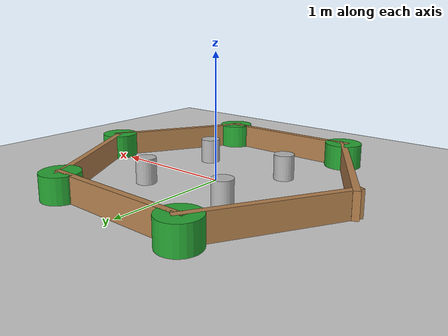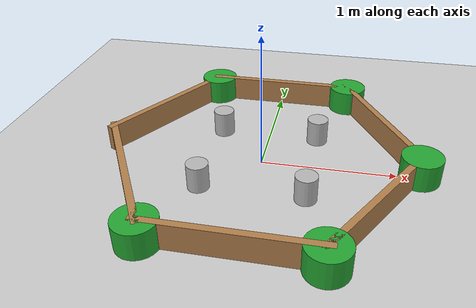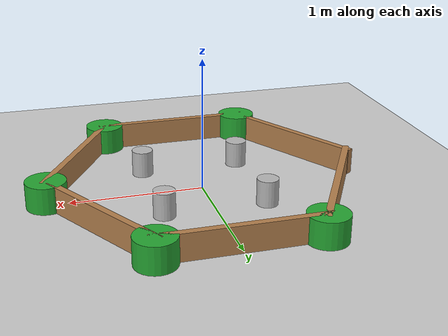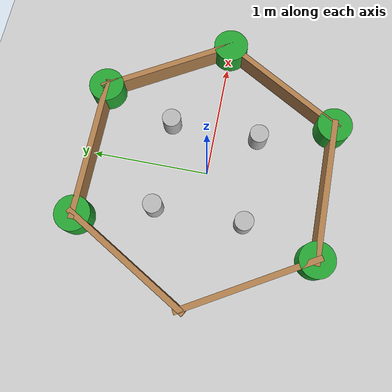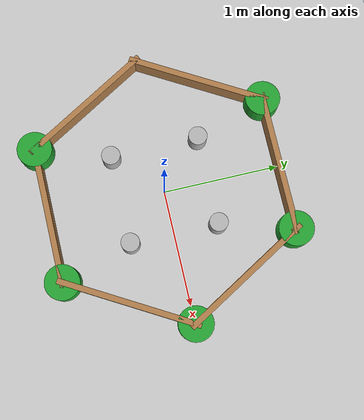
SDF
<?xml version="1.0" ?>
<sdf version="1.6">
  <world name="turtlebot3_hex_2m">
    <include><uri>model://sun</uri></include>
    <include><uri>model://ground_plane</uri></include>

    <physics type="ode">
      <real_time_update_rate>1000.0</real_time_update_rate>
      <max_step_size>0.001</max_step_size>
    </physics>

    <model name="hex_walls">
      <static>true</static>
      <link name="wall_1">
        <pose>0.866 0.5 0.1 0 0 0.523599</pose>
        <collision name="c1"><geometry><box><size>0.05 1.25 0.2</size></box></geometry></collision>
        <visual name="v1"><geometry><box><size>0.05 1.25 0.2</size></box></geometry><material><script><uri>file://media/materials/scripts/gazebo.material</uri><name>Gazebo/Wood</name></script></material></visual>
      </link>
      <link name="wall_2">
        <pose>0 1.0 0.1 0 0 1.5708</pose>
        <collision name="c2"><geometry><box><size>0.05 1.25 0.2</size></box></geometry></collision>
        <visual name="v2"><geometry><box><size>0.05 1.25 0.2</size></box></geometry><material><script><uri>file://media/materials/scripts/gazebo.material</uri><name>Gazebo/Wood</name></script></material></visual>
      </link>
      <link name="wall_3">
        <pose>-0.866 0.5 0.1 0 0 2.61799</pose>
        <collision name="c3"><geometry><box><size>0.05 1.25 0.2</size></box></geometry></collision>
        <visual name="v3"><geometry><box><size>0.05 1.25 0.2</size></box></geometry><material><script><uri>file://media/materials/scripts/gazebo.material</uri><name>Gazebo/Wood</name></script></material></visual>
      </link>
      <link name="wall_4">
        <pose>-0.866 -0.5 0.1 0 0 -2.61799</pose>
        <collision name="c4"><geometry><box><size>0.05 1.25 0.2</size></box></geometry></collision>
        <visual name="v4"><geometry><box><size>0.05 1.25 0.2</size></box></geometry><material><script><uri>file://media/materials/scripts/gazebo.material</uri><name>Gazebo/Wood</name></script></material></visual>
      </link>
      <link name="wall_5">
        <pose>0 -1.0 0.1 0 0 -1.5708</pose>
        <collision name="c5"><geometry><box><size>0.05 1.25 0.2</size></box></geometry></collision>
        <visual name="v5"><geometry><box><size>0.05 1.25 0.2</size></box></geometry><material><script><uri>file://media/materials/scripts/gazebo.material</uri><name>Gazebo/Wood</name></script></material></visual>
      </link>
      <link name="wall_6">
        <pose>0.866 -0.5 0.1 0 0 -0.523599</pose>
        <collision name="c6"><geometry><box><size>0.05 1.25 0.2</size></box></geometry></collision>
        <visual name="v6"><geometry><box><size>0.05 1.25 0.2</size></box></geometry><material><script><uri>file://media/materials/scripts/gazebo.material</uri><name>Gazebo/Wood</name></script></material></visual>
      </link>
    </model>

    <model name="obs_top_left"><static>true</static><pose>0.38 0.38 0.1 0 0 0</pose><link name="link"><visual name="v"><geometry><cylinder><radius>0.08</radius><length>0.2</length></cylinder></geometry></visual><collision name="c"><geometry><cylinder><radius>0.08</radius><length>0.2</length></cylinder></geometry></collision></link></model>

    <model name="obs_top_right"><static>true</static><pose>0.38 -0.38 0.1 0 0 0</pose><link name="link"><visual name="v"><geometry><cylinder><radius>0.08</radius><length>0.2</length></cylinder></geometry></visual><collision name="c"><geometry><cylinder><radius>0.08</radius><length>0.2</length></cylinder></geometry></collision></link></model>

    <model name="obs_bot_left"><static>true</static><pose>-0.38 0.38 0.1 0 0 0</pose><link name="link"><visual name="v"><geometry><cylinder><radius>0.08</radius><length>0.2</length></cylinder></geometry></visual><collision name="c"><geometry><cylinder><radius>0.08</radius><length>0.2</length></cylinder></geometry></collision></link></model>

    <model name="obs_bot_right"><static>true</static><pose>-0.38 -0.38 0.1 0 0 0</pose><link name="link"><visual name="v"><geometry><cylinder><radius>0.08</radius><length>0.2</length></cylinder></geometry></visual><collision name="c"><geometry><cylinder><radius>0.08</radius><length>0.2</length></cylinder></geometry></collision></link></model>

    <model name="corner_E">
      <static>true</static>
      <pose>1.155 0 0.1 0 0 0</pose>
      <link name="link">
        <collision name="c"><geometry><cylinder><radius>0.15</radius><length>0.2</length></cylinder></geometry></collision>
        <visual name="v"><geometry><cylinder><radius>0.15</radius><length>0.2</length></cylinder></geometry><material><script><uri>file://media/materials/scripts/gazebo.material</uri><name>Gazebo/Green</name></script></material></visual>
      </link>
    </model>
    <model name="corner_NE">
      <static>true</static>
      <pose>0.5775 1.0 0.1 0 0 0</pose>
      <link name="link">
        <collision name="c"><geometry><cylinder><radius>0.15</radius><length>0.2</length></cylinder></geometry></collision>
        <visual name="v"><geometry><cylinder><radius>0.15</radius><length>0.2</length></cylinder></geometry><material><script><uri>file://media/materials/scripts/gazebo.material</uri><name>Gazebo/Green</name></script></material></visual>
      </link>
    </model>
    <model name="corner_NW">
      <static>true</static>
      <pose>-0.5775 1.0 0.1 0 0 0</pose>
      <link name="link">
        <collision name="c"><geometry><cylinder><radius>0.15</radius><length>0.2</length></cylinder></geometry></collision>
        <visual name="v"><geometry><cylinder><radius>0.15</radius><length>0.2</length></cylinder></geometry><material><script><uri>file://media/materials/scripts/gazebo.material</uri><name>Gazebo/Green</name></script></material></visual>
      </link>
    </model>
    <model name="corner_SW">
      <static>true</static>
      <pose>-0.5775 -1.0 0.1 0 0 0</pose>
      <link name="link">
        <collision name="c"><geometry><cylinder><radius>0.15</radius><length>0.2</length></cylinder></geometry></collision>
        <visual name="v"><geometry><cylinder><radius>0.15</radius><length>0.2</length></cylinder></geometry><material><script><uri>file://media/materials/scripts/gazebo.material</uri><name>Gazebo/Green</name></script></material></visual>
      </link>
    </model>
    <model name="corner_SE">
      <static>true</static>
      <pose>0.5775 -1.0 0.1 0 0 0</pose>
      <link name="link">
        <collision name="c"><geometry><cylinder><radius>0.15</radius><length>0.2</length></cylinder></geometry></collision>
        <visual name="v"><geometry><cylinder><radius>0.15</radius><length>0.2</length></cylinder></geometry><material><script><uri>file://media/materials/scripts/gazebo.material</uri><name>Gazebo/Green</name></script></material></visual>
      </link>
    </model>

  </world>
</sdf>
